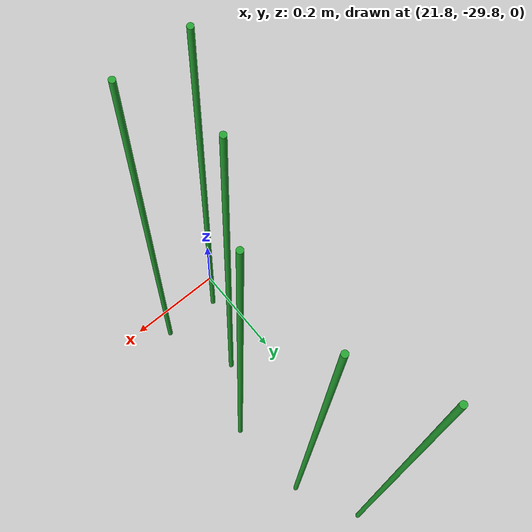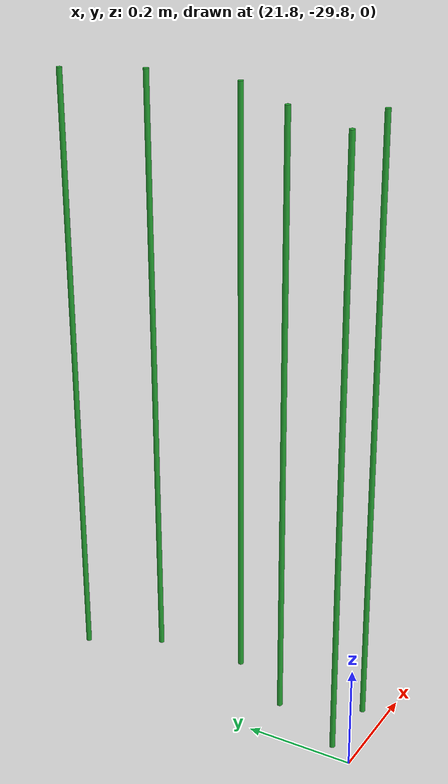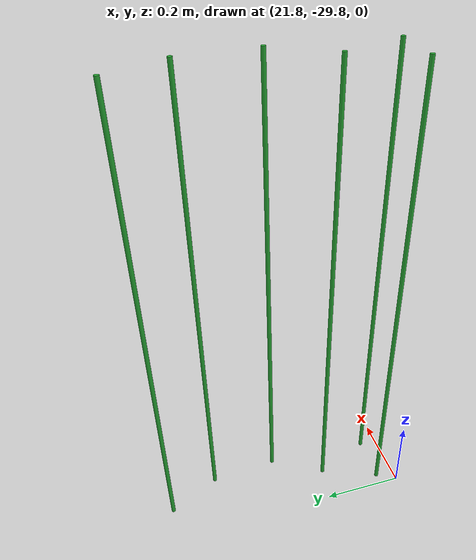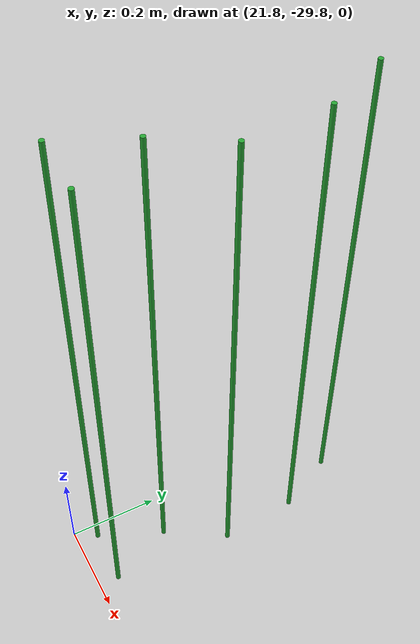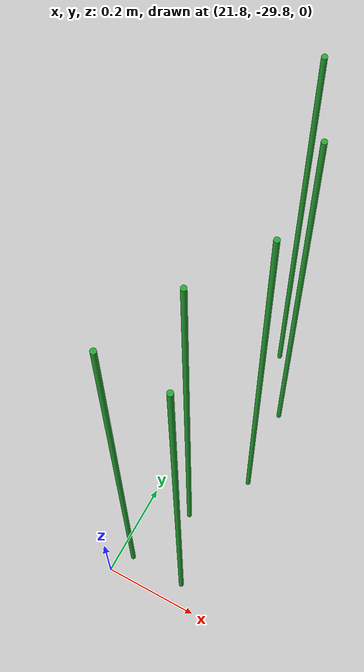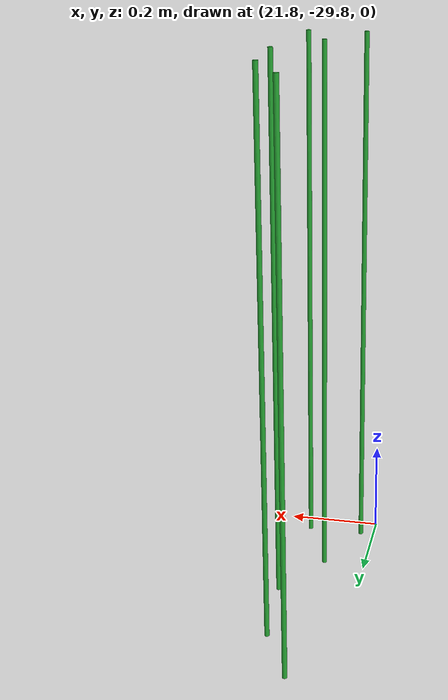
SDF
<sdf version="1.6">
 <world name="default">
  <model name="pole_27_clone_clone_144">
   <link name="link">
    <inertial>
     <mass>1</mass>
     <inertia><ixx>1</ixx><ixy>0</ixy><ixz>0</ixz><iyy>1</iyy><iyz>0</iyz><izz>1</izz></inertia>
    </inertial>
    <visual name="visual">
     <geometry><cylinder><length>1.15</length><radius>0.005</radius></cylinder></geometry>
     <material>
      <script><uri>file://media/materials/scripts/gazebo.material</uri><name>Gazebo/Green</name></script>
      <shader type="vertex"><normal_map>__default__</normal_map></shader>
      <emissive>0 0.1 0 1</emissive>
      <specular>0 0.01 0 1</specular>
      <ambient>0 0.5 0 1</ambient>
      <diffuse>0 0.05 0 1</diffuse>
     </material>
    </visual>
    <collision name="collision">
     <geometry><cylinder><radius>0.005</radius><length>1.15</length></cylinder></geometry>
     <surface>
      <friction>
       <ode><mu>1</mu><mu2>1</mu2><fdir1>0 0 0</fdir1><slip1>0</slip1><slip2>0</slip2></ode>
       <torsional>
        <coefficient>1</coefficient>
        <patch_radius>0</patch_radius>
        <surface_radius>0</surface_radius>
        <use_patch_radius>1</use_patch_radius>
        <ode><slip>0</slip></ode>
       </torsional>
      </friction>
      <bounce><restitution_coefficient>0</restitution_coefficient><threshold>1e+06</threshold></bounce>
      <contact>
       <collide_without_contact>0</collide_without_contact>
       <collide_without_contact_bitmask>1</collide_without_contact_bitmask>
       <collide_bitmask>1</collide_bitmask>
       <ode>
        <soft_cfm>0</soft_cfm>
        <soft_erp>0.2</soft_erp>
        <kp>1e+13</kp>
        <kd>1</kd>
        <max_vel>0.01</max_vel>
        <min_depth>0</min_depth>
       </ode>
       <bullet>
        <split_impulse>1</split_impulse>
        <split_impulse_penetration_threshold>-0.01</split_impulse_penetration_threshold>
        <soft_cfm>0</soft_cfm>
        <soft_erp>0.2</soft_erp>
        <kp>1e+13</kp>
        <kd>1</kd>
       </bullet>
      </contact>
     </surface>
    </collision>
   </link>
   <static>1</static>
   <pose>21.9667 -29.4859 0.575 0 -0 0</pose>
  </model>
  <model name="pole_27_clone_clone_146">
   <link name="link">
    <inertial>
     <mass>1</mass>
     <inertia><ixx>1</ixx><ixy>0</ixy><ixz>0</ixz><iyy>1</iyy><iyz>0</iyz><izz>1</izz></inertia>
    </inertial>
    <visual name="visual">
     <geometry><cylinder><length>1.15</length><radius>0.005</radius></cylinder></geometry>
     <material>
      <script><uri>file://media/materials/scripts/gazebo.material</uri><name>Gazebo/Green</name></script>
      <shader type="vertex"><normal_map>__default__</normal_map></shader>
      <emissive>0 0.1 0 1</emissive>
      <specular>0 0.01 0 1</specular>
      <ambient>0 0.5 0 1</ambient>
      <diffuse>0 0.05 0 1</diffuse>
     </material>
    </visual>
    <collision name="collision">
     <geometry><cylinder><radius>0.005</radius><length>1.15</length></cylinder></geometry>
     <surface>
      <friction>
       <ode><mu>1</mu><mu2>1</mu2><fdir1>0 0 0</fdir1><slip1>0</slip1><slip2>0</slip2></ode>
       <torsional>
        <coefficient>1</coefficient>
        <patch_radius>0</patch_radius>
        <surface_radius>0</surface_radius>
        <use_patch_radius>1</use_patch_radius>
        <ode><slip>0</slip></ode>
       </torsional>
      </friction>
      <bounce><restitution_coefficient>0</restitution_coefficient><threshold>1e+06</threshold></bounce>
      <contact>
       <collide_without_contact>0</collide_without_contact>
       <collide_without_contact_bitmask>1</collide_without_contact_bitmask>
       <collide_bitmask>1</collide_bitmask>
       <ode>
        <soft_cfm>0</soft_cfm>
        <soft_erp>0.2</soft_erp>
        <kp>1e+13</kp>
        <kd>1</kd>
        <max_vel>0.01</max_vel>
        <min_depth>0</min_depth>
       </ode>
       <bullet>
        <split_impulse>1</split_impulse>
        <split_impulse_penetration_threshold>-0.01</split_impulse_penetration_threshold>
        <soft_cfm>0</soft_cfm>
        <soft_erp>0.2</soft_erp>
        <kp>1e+13</kp>
        <kd>1</kd>
       </bullet>
      </contact>
     </surface>
    </collision>
   </link>
   <static>1</static>
   <pose>21.8896 -29.6126 0.575 0 -0 0</pose>
  </model>
  <model name="pole_27_clone_clone_148">
   <link name="link">
    <inertial>
     <mass>1</mass>
     <inertia><ixx>1</ixx><ixy>0</ixy><ixz>0</ixz><iyy>1</iyy><iyz>0</iyz><izz>1</izz></inertia>
    </inertial>
    <visual name="visual">
     <geometry><cylinder><length>1.15</length><radius>0.005</radius></cylinder></geometry>
     <material>
      <script><uri>file://media/materials/scripts/gazebo.material</uri><name>Gazebo/Green</name></script>
      <shader type="vertex"><normal_map>__default__</normal_map></shader>
      <emissive>0 0.1 0 1</emissive>
      <specular>0 0.01 0 1</specular>
      <ambient>0 0.5 0 1</ambient>
      <diffuse>0 0.05 0 1</diffuse>
     </material>
    </visual>
    <collision name="collision">
     <geometry><cylinder><radius>0.005</radius><length>1.15</length></cylinder></geometry>
     <surface>
      <friction>
       <ode><mu>1</mu><mu2>1</mu2><fdir1>0 0 0</fdir1><slip1>0</slip1><slip2>0</slip2></ode>
       <torsional>
        <coefficient>1</coefficient>
        <patch_radius>0</patch_radius>
        <surface_radius>0</surface_radius>
        <use_patch_radius>1</use_patch_radius>
        <ode><slip>0</slip></ode>
       </torsional>
      </friction>
      <bounce><restitution_coefficient>0</restitution_coefficient><threshold>1e+06</threshold></bounce>
      <contact>
       <collide_without_contact>0</collide_without_contact>
       <collide_without_contact_bitmask>1</collide_without_contact_bitmask>
       <collide_bitmask>1</collide_bitmask>
       <ode>
        <soft_cfm>0</soft_cfm>
        <soft_erp>0.2</soft_erp>
        <kp>1e+13</kp>
        <kd>1</kd>
        <max_vel>0.01</max_vel>
        <min_depth>0</min_depth>
       </ode>
       <bullet>
        <split_impulse>1</split_impulse>
        <split_impulse_penetration_threshold>-0.01</split_impulse_penetration_threshold>
        <soft_cfm>0</soft_cfm>
        <soft_erp>0.2</soft_erp>
        <kp>1e+13</kp>
        <kd>1</kd>
       </bullet>
      </contact>
     </surface>
    </collision>
   </link>
   <static>1</static>
   <pose>21.8289 -29.7524 0.575 0 -0 0</pose>
  </model>
  <model name="pole_27_clone_clone_149">
   <link name="link">
    <inertial>
     <mass>1</mass>
     <inertia><ixx>1</ixx><ixy>0</ixy><ixz>0</ixz><iyy>1</iyy><iyz>0</iyz><izz>1</izz></inertia>
    </inertial>
    <visual name="visual">
     <geometry><cylinder><length>1.15</length><radius>0.005</radius></cylinder></geometry>
     <material>
      <script><uri>file://media/materials/scripts/gazebo.material</uri><name>Gazebo/Green</name></script>
      <shader type="vertex"><normal_map>__default__</normal_map></shader>
      <emissive>0 0.1 0 1</emissive>
      <specular>0 0.01 0 1</specular>
      <ambient>0 0.5 0 1</ambient>
      <diffuse>0 0.05 0 1</diffuse>
     </material>
    </visual>
    <collision name="collision">
     <geometry><cylinder><radius>0.005</radius><length>1.15</length></cylinder></geometry>
     <surface>
      <friction>
       <ode><mu>1</mu><mu2>1</mu2><fdir1>0 0 0</fdir1><slip1>0</slip1><slip2>0</slip2></ode>
       <torsional>
        <coefficient>1</coefficient>
        <patch_radius>0</patch_radius>
        <surface_radius>0</surface_radius>
        <use_patch_radius>1</use_patch_radius>
        <ode><slip>0</slip></ode>
       </torsional>
      </friction>
      <bounce><restitution_coefficient>0</restitution_coefficient><threshold>1e+06</threshold></bounce>
      <contact>
       <collide_without_contact>0</collide_without_contact>
       <collide_without_contact_bitmask>1</collide_without_contact_bitmask>
       <collide_bitmask>1</collide_bitmask>
       <ode>
        <soft_cfm>0</soft_cfm>
        <soft_erp>0.2</soft_erp>
        <kp>1e+13</kp>
        <kd>1</kd>
        <max_vel>0.01</max_vel>
        <min_depth>0</min_depth>
       </ode>
       <bullet>
        <split_impulse>1</split_impulse>
        <split_impulse_penetration_threshold>-0.01</split_impulse_penetration_threshold>
        <soft_cfm>0</soft_cfm>
        <soft_erp>0.2</soft_erp>
        <kp>1e+13</kp>
        <kd>1</kd>
       </bullet>
      </contact>
     </surface>
    </collision>
   </link>
   <static>1</static>
   <pose>21.9486 -29.755 0.575 0 -0 0</pose>
  </model>
  <model name="pole_27_clone_clone_151">
   <link name="link">
    <inertial>
     <mass>1</mass>
     <inertia><ixx>1</ixx><ixy>0</ixy><ixz>0</ixz><iyy>1</iyy><iyz>0</iyz><izz>1</izz></inertia>
    </inertial>
    <visual name="visual">
     <geometry><cylinder><length>1.15</length><radius>0.005</radius></cylinder></geometry>
     <material>
      <script><uri>file://media/materials/scripts/gazebo.material</uri><name>Gazebo/Green</name></script>
      <shader type="vertex"><normal_map>__default__</normal_map></shader>
      <emissive>0 0.1 0 1</emissive>
      <specular>0 0.01 0 1</specular>
      <ambient>0 0.5 0 1</ambient>
      <diffuse>0 0.05 0 1</diffuse>
     </material>
    </visual>
    <collision name="collision">
     <geometry><cylinder><radius>0.005</radius><length>1.15</length></cylinder></geometry>
     <surface>
      <friction>
       <ode><mu>1</mu><mu2>1</mu2><fdir1>0 0 0</fdir1><slip1>0</slip1><slip2>0</slip2></ode>
       <torsional>
        <coefficient>1</coefficient>
        <patch_radius>0</patch_radius>
        <surface_radius>0</surface_radius>
        <use_patch_radius>1</use_patch_radius>
        <ode><slip>0</slip></ode>
       </torsional>
      </friction>
      <bounce><restitution_coefficient>0</restitution_coefficient><threshold>1e+06</threshold></bounce>
      <contact>
       <collide_without_contact>0</collide_without_contact>
       <collide_without_contact_bitmask>1</collide_without_contact_bitmask>
       <collide_bitmask>1</collide_bitmask>
       <ode>
        <soft_cfm>0</soft_cfm>
        <soft_erp>0.2</soft_erp>
        <kp>1e+13</kp>
        <kd>1</kd>
        <max_vel>0.01</max_vel>
        <min_depth>0</min_depth>
       </ode>
       <bullet>
        <split_impulse>1</split_impulse>
        <split_impulse_penetration_threshold>-0.01</split_impulse_penetration_threshold>
        <soft_cfm>0</soft_cfm>
        <soft_erp>0.2</soft_erp>
        <kp>1e+13</kp>
        <kd>1</kd>
       </bullet>
      </contact>
     </surface>
    </collision>
   </link>
   <static>1</static>
   <pose>21.953 -29.3143 0.575 0 -0 0</pose>
  </model>
  <model name="pole_27_clone_clone_153">
   <link name="link">
    <inertial>
     <mass>1</mass>
     <inertia><ixx>1</ixx><ixy>0</ixy><ixz>0</ixz><iyy>1</iyy><iyz>0</iyz><izz>1</izz></inertia>
    </inertial>
    <visual name="visual">
     <geometry><cylinder><length>1.15</length><radius>0.005</radius></cylinder></geometry>
     <material>
      <script><uri>file://media/materials/scripts/gazebo.material</uri><name>Gazebo/Green</name></script>
      <shader type="vertex"><normal_map>__default__</normal_map></shader>
      <emissive>0 0.1 0 1</emissive>
      <specular>0 0.01 0 1</specular>
      <ambient>0 0.5 0 1</ambient>
      <diffuse>0 0.05 0 1</diffuse>
     </material>
    </visual>
    <collision name="collision">
     <geometry><cylinder><radius>0.005</radius><length>1.15</length></cylinder></geometry>
     <surface>
      <friction>
       <ode><mu>1</mu><mu2>1</mu2><fdir1>0 0 0</fdir1><slip1>0</slip1><slip2>0</slip2></ode>
       <torsional>
        <coefficient>1</coefficient>
        <patch_radius>0</patch_radius>
        <surface_radius>0</surface_radius>
        <use_patch_radius>1</use_patch_radius>
        <ode><slip>0</slip></ode>
       </torsional>
      </friction>
      <bounce><restitution_coefficient>0</restitution_coefficient><threshold>1e+06</threshold></bounce>
      <contact>
       <collide_without_contact>0</collide_without_contact>
       <collide_without_contact_bitmask>1</collide_without_contact_bitmask>
       <collide_bitmask>1</collide_bitmask>
       <ode>
        <soft_cfm>0</soft_cfm>
        <soft_erp>0.2</soft_erp>
        <kp>1e+13</kp>
        <kd>1</kd>
        <max_vel>0.01</max_vel>
        <min_depth>0</min_depth>
       </ode>
       <bullet>
        <split_impulse>1</split_impulse>
        <split_impulse_penetration_threshold>-0.01</split_impulse_penetration_threshold>
        <soft_cfm>0</soft_cfm>
        <soft_erp>0.2</soft_erp>
        <kp>1e+13</kp>
        <kd>1</kd>
       </bullet>
      </contact>
     </surface>
    </collision>
   </link>
   <static>1</static>
   <pose>21.8881 -29.1859 0.575 0 -0 0</pose>
  </model>
 </world>
</sdf>
